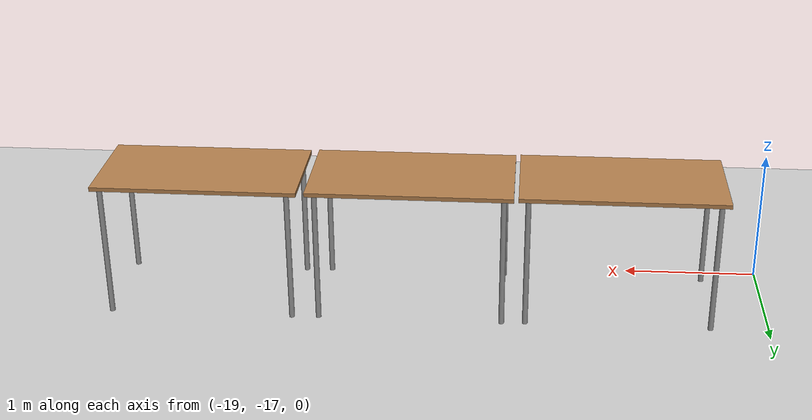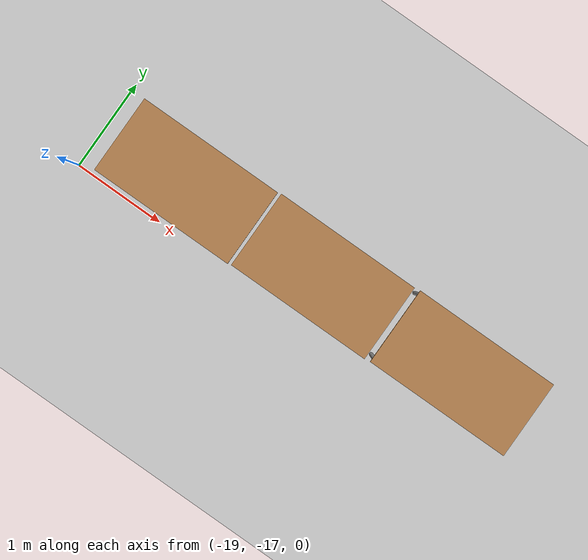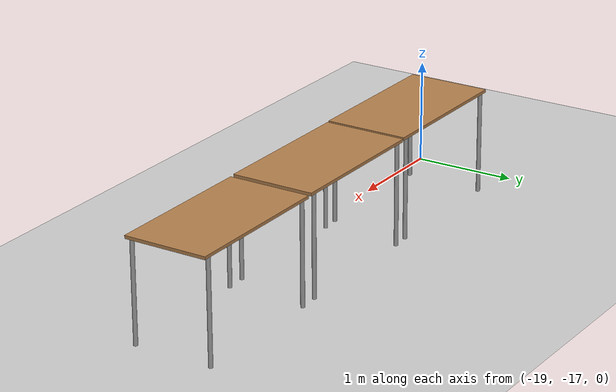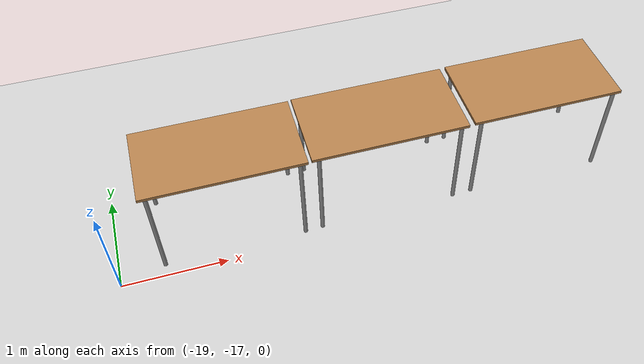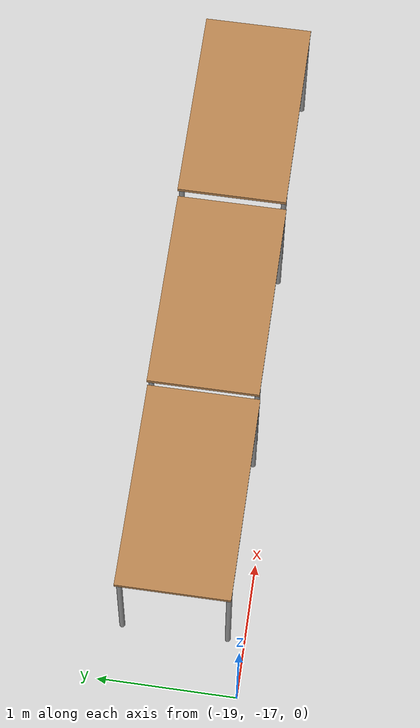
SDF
<sdf version="1.6">
 <world name="default">
  <model name="ground_plane">
   <static>1</static>
   <link name="link">
    <collision name="collision">
     <geometry><plane><normal>0 0 1</normal><size>100 100</size></plane></geometry>
     <surface><friction><ode><mu>100</mu><mu2>50</mu2></ode></friction></surface>
    </collision>
    <visual name="visual">
     <cast_shadows>0</cast_shadows>
     <geometry><plane><normal>0 0 1</normal><size>100 100</size></plane></geometry>
     <material>
      <script><uri>file://media/materials/scripts/gazebo.material</uri><name>Gazebo/Grey</name></script>
     </material>
    </visual>
   </link>
  </model>
  <model name="table_clone_13">
   <static>1</static>
   <link name="link">
    <collision name="surface">
     <pose>0 0 1 0 -0 0</pose>
     <geometry><box><size>1.5 0.8 0.03</size></box></geometry>
     <surface><friction><ode><mu>0.6</mu><mu2>0.6</mu2></ode></friction></surface>
    </collision>
    <visual name="visual1">
     <pose>0 0 1 0 -0 0</pose>
     <geometry><box><size>1.5 0.8 0.03</size></box></geometry>
     <material>
      <script><uri>file://media/materials/scripts/gazebo.material</uri><name>Gazebo/Wood</name></script>
     </material>
    </visual>
    <collision name="front_left_leg">
     <pose>0.68 0.38 0.5 0 -0 0</pose>
     <geometry><cylinder><radius>0.02</radius><length>1</length></cylinder></geometry>
    </collision>
    <visual name="front_left_leg">
     <pose>0.68 0.38 0.5 0 -0 0</pose>
     <geometry><cylinder><radius>0.02</radius><length>1</length></cylinder></geometry>
     <material>
      <script><uri>file://media/materials/scripts/gazebo.material</uri><name>Gazebo/Grey</name></script>
     </material>
    </visual>
    <collision name="front_right_leg">
     <pose>0.68 -0.38 0.5 0 -0 0</pose>
     <geometry><cylinder><radius>0.02</radius><length>1</length></cylinder></geometry>
    </collision>
    <visual name="front_right_leg">
     <pose>0.68 -0.38 0.5 0 -0 0</pose>
     <geometry><cylinder><radius>0.02</radius><length>1</length></cylinder></geometry>
     <material>
      <script><uri>file://media/materials/scripts/gazebo.material</uri><name>Gazebo/Grey</name></script>
     </material>
    </visual>
    <collision name="back_right_leg">
     <pose>-0.68 -0.38 0.5 0 -0 0</pose>
     <geometry><cylinder><radius>0.02</radius><length>1</length></cylinder></geometry>
    </collision>
    <visual name="back_right_leg">
     <pose>-0.68 -0.38 0.5 0 -0 0</pose>
     <geometry><cylinder><radius>0.02</radius><length>1</length></cylinder></geometry>
     <material>
      <script><uri>file://media/materials/scripts/gazebo.material</uri><name>Gazebo/Grey</name></script>
     </material>
    </visual>
    <collision name="back_left_leg">
     <pose>-0.68 0.38 0.5 0 -0 0</pose>
     <geometry><cylinder><radius>0.02</radius><length>1</length></cylinder></geometry>
    </collision>
    <visual name="back_left_leg">
     <pose>-0.68 0.38 0.5 0 -0 0</pose>
     <geometry><cylinder><radius>0.02</radius><length>1</length></cylinder></geometry>
     <material>
      <script><uri>file://media/materials/scripts/gazebo.material</uri><name>Gazebo/Grey</name></script>
     </material>
    </visual>
   </link>
   <pose>-14.8044 -16.4759 0 0 -0 0</pose>
  </model>
  <model name="table_clone_14">
   <static>1</static>
   <link name="link">
    <collision name="surface">
     <pose>0 0 1 0 -0 0</pose>
     <geometry><box><size>1.5 0.8 0.03</size></box></geometry>
     <surface><friction><ode><mu>0.6</mu><mu2>0.6</mu2></ode></friction></surface>
    </collision>
    <visual name="visual1">
     <pose>0 0 1 0 -0 0</pose>
     <geometry><box><size>1.5 0.8 0.03</size></box></geometry>
     <material>
      <script><uri>file://media/materials/scripts/gazebo.material</uri><name>Gazebo/Wood</name></script>
     </material>
    </visual>
    <collision name="front_left_leg">
     <pose>0.68 0.38 0.5 0 -0 0</pose>
     <geometry><cylinder><radius>0.02</radius><length>1</length></cylinder></geometry>
    </collision>
    <visual name="front_left_leg">
     <pose>0.68 0.38 0.5 0 -0 0</pose>
     <geometry><cylinder><radius>0.02</radius><length>1</length></cylinder></geometry>
     <material>
      <script><uri>file://media/materials/scripts/gazebo.material</uri><name>Gazebo/Grey</name></script>
     </material>
    </visual>
    <collision name="front_right_leg">
     <pose>0.68 -0.38 0.5 0 -0 0</pose>
     <geometry><cylinder><radius>0.02</radius><length>1</length></cylinder></geometry>
    </collision>
    <visual name="front_right_leg">
     <pose>0.68 -0.38 0.5 0 -0 0</pose>
     <geometry><cylinder><radius>0.02</radius><length>1</length></cylinder></geometry>
     <material>
      <script><uri>file://media/materials/scripts/gazebo.material</uri><name>Gazebo/Grey</name></script>
     </material>
    </visual>
    <collision name="back_right_leg">
     <pose>-0.68 -0.38 0.5 0 -0 0</pose>
     <geometry><cylinder><radius>0.02</radius><length>1</length></cylinder></geometry>
    </collision>
    <visual name="back_right_leg">
     <pose>-0.68 -0.38 0.5 0 -0 0</pose>
     <geometry><cylinder><radius>0.02</radius><length>1</length></cylinder></geometry>
     <material>
      <script><uri>file://media/materials/scripts/gazebo.material</uri><name>Gazebo/Grey</name></script>
     </material>
    </visual>
    <collision name="back_left_leg">
     <pose>-0.68 0.38 0.5 0 -0 0</pose>
     <geometry><cylinder><radius>0.02</radius><length>1</length></cylinder></geometry>
    </collision>
    <visual name="back_left_leg">
     <pose>-0.68 0.38 0.5 0 -0 0</pose>
     <geometry><cylinder><radius>0.02</radius><length>1</length></cylinder></geometry>
     <material>
      <script><uri>file://media/materials/scripts/gazebo.material</uri><name>Gazebo/Grey</name></script>
     </material>
    </visual>
   </link>
   <pose>-16.3628 -16.486 0 0 -0 0</pose>
  </model>
  <model name="table_clone_15">
   <static>1</static>
   <link name="link">
    <collision name="surface">
     <pose>0 0 1 0 -0 0</pose>
     <geometry><box><size>1.5 0.8 0.03</size></box></geometry>
     <surface><friction><ode><mu>0.6</mu><mu2>0.6</mu2></ode></friction></surface>
    </collision>
    <visual name="visual1">
     <pose>0 0 1 0 -0 0</pose>
     <geometry><box><size>1.5 0.8 0.03</size></box></geometry>
     <material>
      <script><uri>file://media/materials/scripts/gazebo.material</uri><name>Gazebo/Wood</name></script>
     </material>
    </visual>
    <collision name="front_left_leg">
     <pose>0.68 0.38 0.5 0 -0 0</pose>
     <geometry><cylinder><radius>0.02</radius><length>1</length></cylinder></geometry>
    </collision>
    <visual name="front_left_leg">
     <pose>0.68 0.38 0.5 0 -0 0</pose>
     <geometry><cylinder><radius>0.02</radius><length>1</length></cylinder></geometry>
     <material>
      <script><uri>file://media/materials/scripts/gazebo.material</uri><name>Gazebo/Grey</name></script>
     </material>
    </visual>
    <collision name="front_right_leg">
     <pose>0.68 -0.38 0.5 0 -0 0</pose>
     <geometry><cylinder><radius>0.02</radius><length>1</length></cylinder></geometry>
    </collision>
    <visual name="front_right_leg">
     <pose>0.68 -0.38 0.5 0 -0 0</pose>
     <geometry><cylinder><radius>0.02</radius><length>1</length></cylinder></geometry>
     <material>
      <script><uri>file://media/materials/scripts/gazebo.material</uri><name>Gazebo/Grey</name></script>
     </material>
    </visual>
    <collision name="back_right_leg">
     <pose>-0.68 -0.38 0.5 0 -0 0</pose>
     <geometry><cylinder><radius>0.02</radius><length>1</length></cylinder></geometry>
    </collision>
    <visual name="back_right_leg">
     <pose>-0.68 -0.38 0.5 0 -0 0</pose>
     <geometry><cylinder><radius>0.02</radius><length>1</length></cylinder></geometry>
     <material>
      <script><uri>file://media/materials/scripts/gazebo.material</uri><name>Gazebo/Grey</name></script>
     </material>
    </visual>
    <collision name="back_left_leg">
     <pose>-0.68 0.38 0.5 0 -0 0</pose>
     <geometry><cylinder><radius>0.02</radius><length>1</length></cylinder></geometry>
    </collision>
    <visual name="back_left_leg">
     <pose>-0.68 0.38 0.5 0 -0 0</pose>
     <geometry><cylinder><radius>0.02</radius><length>1</length></cylinder></geometry>
     <material>
      <script><uri>file://media/materials/scripts/gazebo.material</uri><name>Gazebo/Grey</name></script>
     </material>
    </visual>
   </link>
   <pose>-17.8965 -16.4965 0 0 -0 0</pose>
  </model>
 </world>
</sdf>
